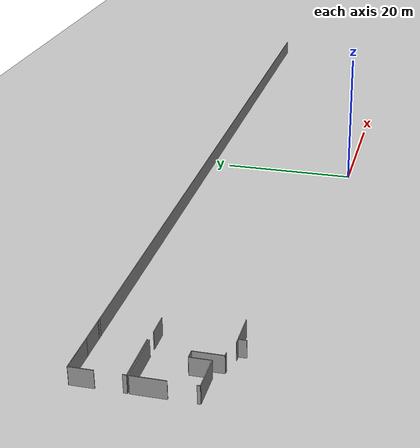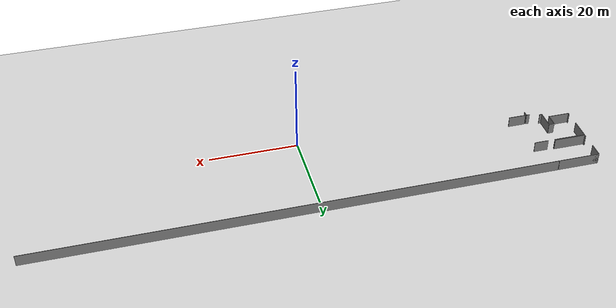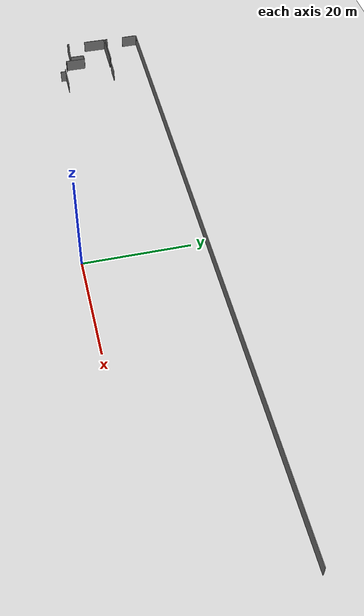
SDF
<sdf version="1.6">
 <world name="default">
  <model name="ground_plane">
   <static>1</static>
   <link name="link">
    <collision name="collision">
     <geometry><plane><normal>0 0 1</normal><size>100 100</size></plane></geometry>
     <surface><friction><ode><mu>100</mu><mu2>50</mu2></ode></friction></surface>
    </collision>
    <visual name="visual">
     <cast_shadows>0</cast_shadows>
     <geometry><plane><normal>0 0 1</normal><size>100 100</size></plane></geometry>
     <material>
      <script><uri>file://media/materials/scripts/gazebo.material</uri><name>Gazebo/Grey</name></script>
     </material>
    </visual>
   </link>
  </model>
  <model name="50010540">
   <static>1</static>
   <link name="Wall_0">
    <collision name="Wall_0_Collision">
     <geometry><box><size>5.65717808411 0.1 2.5</size></box></geometry>
     <pose>2.82858904205 0 1.25 0 0 0</pose>
    </collision>
    <visual name="Wall_0_Visual">
     <pose>2.82858904205 0 1.25 0 0 0</pose>
     <geometry><box><size>5.65717808411 0.1 2.5</size></box></geometry>
     <material>
      <script><uri>file://media/materials/scripts/gazebo.material</uri><name>Gazebo/Grey</name></script>
      <ambient>1 1 1 1</ambient>
     </material>
    </visual>
   </link>
   <link name="Wall_1">
    <collision name="Wall_1_Collision">
     <geometry><box><size>0.677229308471 0.1 2.5</size></box></geometry>
     <pose>0.338614654236 0 1.25 0 0 0</pose>
    </collision>
    <visual name="Wall_1_Visual">
     <pose>0.338614654236 0 1.25 0 0 0</pose>
     <geometry><box><size>0.677229308471 0.1 2.5</size></box></geometry>
     <material>
      <script><uri>file://media/materials/scripts/gazebo.material</uri><name>Gazebo/Grey</name></script>
      <ambient>1 1 1 1</ambient>
     </material>
    </visual>
    <pose>9.3474931203 -0.0 0 0 0 0.0</pose>
   </link>
   <link name="Wall_9">
    <collision name="Wall_9_Collision">
     <geometry><box><size>7.16035259649 0.1 2.5</size></box></geometry>
     <pose>3.58017629825 0 1.25 0 0 0</pose>
    </collision>
    <visual name="Wall_9_Visual">
     <pose>3.58017629825 0 1.25 0 0 0</pose>
     <geometry><box><size>7.16035259649 0.1 2.5</size></box></geometry>
     <material>
      <script><uri>file://media/materials/scripts/gazebo.material</uri><name>Gazebo/Grey</name></script>
      <ambient>1 1 1 1</ambient>
     </material>
    </visual>
    <pose>7.17204649596 -7.03260945553 0 0 0 3.14159265359</pose>
   </link>
   <link name="Wall_10">
    <collision name="Wall_10_Collision">
     <geometry><box><size>0.500295525177 0.1 2.5</size></box></geometry>
     <pose>0.250147762588 0 1.25 0 0 0</pose>
    </collision>
    <visual name="Wall_10_Visual">
     <pose>0.250147762588 0 1.25 0 0 0</pose>
     <geometry><box><size>0.500295525177 0.1 2.5</size></box></geometry>
     <material>
      <script><uri>file://media/materials/scripts/gazebo.material</uri><name>Gazebo/Grey</name></script>
      <ambient>1 1 1 1</ambient>
     </material>
    </visual>
    <pose>0.0116938994706 -7.03260945553 0 0 0 1.57079632679</pose>
   </link>
   <link name="Wall_11">
    <collision name="Wall_11_Collision">
     <geometry><box><size>3.13830850348 0.1 2.5</size></box></geometry>
     <pose>1.56915425174 0 1.25 0 0 0</pose>
    </collision>
    <visual name="Wall_11_Visual">
     <pose>1.56915425174 0 1.25 0 0 0</pose>
     <geometry><box><size>3.13830850348 0.1 2.5</size></box></geometry>
     <material>
      <script><uri>file://media/materials/scripts/gazebo.material</uri><name>Gazebo/Grey</name></script>
      <ambient>1 1 1 1</ambient>
     </material>
    </visual>
    <pose>0.0116938994706 -3.13828671662 0 0 0 1.57452251449</pose>
   </link>
   <link name="Wall_12">
    <collision name="Wall_12_Collision">
     <geometry><box><size>0.398990765633 0.1 2.5</size></box></geometry>
     <pose>0.199495382816 0 1.25 0 0 0</pose>
    </collision>
    <visual name="Wall_12_Visual">
     <pose>0.199495382816 0 1.25 0 0 0</pose>
     <geometry><box><size>0.398990765633 0.1 2.5</size></box></geometry>
     <material>
      <script><uri>file://media/materials/scripts/gazebo.material</uri><name>Gazebo/Grey</name></script>
      <ambient>1 1 1 1</ambient>
     </material>
    </visual>
    <pose>0.00317769007353 -15.5523778655 0 0 0 1.57079632679</pose>
   </link>
   <link name="Wall_13">
    <collision name="Wall_13_Collision">
     <geometry><box><size>4.48067011128 0.1 2.5</size></box></geometry>
     <pose>2.24033505564 0 1.25 0 0 0</pose>
    </collision>
    <visual name="Wall_13_Visual">
     <pose>2.24033505564 0 1.25 0 0 0</pose>
     <geometry><box><size>4.48067011128 0.1 2.5</size></box></geometry>
     <material>
      <script><uri>file://media/materials/scripts/gazebo.material</uri><name>Gazebo/Grey</name></script>
      <ambient>1 1 1 1</ambient>
     </material>
    </visual>
    <pose>0.00317769007353 -11.7484286323 0 0 0 1.57079632679</pose>
   </link>
   <link name="Wall_14">
    <collision name="Wall_14_Collision">
     <geometry><box><size>7.1736988948 0.1 2.5</size></box></geometry>
     <pose>3.5868494474 0 1.25 0 0 0</pose>
    </collision>
    <visual name="Wall_14_Visual">
     <pose>3.5868494474 0 1.25 0 0 0</pose>
     <geometry><box><size>7.1736988948 0.1 2.5</size></box></geometry>
     <material>
      <script><uri>file://media/materials/scripts/gazebo.material</uri><name>Gazebo/Grey</name></script>
      <ambient>1 1 1 1</ambient>
     </material>
    </visual>
    <pose>0.00317769007353 -7.26775852098 0 0 0 0.0</pose>
   </link>
   <link name="Wall_15">
    <collision name="Wall_15_Collision">
     <geometry><box><size>3.19052794143 0.1 2.5</size></box></geometry>
     <pose>1.59526397071 0 1.25 0 0 0</pose>
    </collision>
    <visual name="Wall_15_Visual">
     <pose>1.59526397071 0 1.25 0 0 0</pose>
     <geometry><box><size>3.19052794143 0.1 2.5</size></box></geometry>
     <material>
      <script><uri>file://media/materials/scripts/gazebo.material</uri><name>Gazebo/Grey</name></script>
      <ambient>1 1 1 1</ambient>
     </material>
    </visual>
    <pose>8.74640126599 -7.26775852098 0 0 0 0.0</pose>
   </link>
   <link name="Wall_19">
    <collision name="Wall_19_Collision">
     <geometry><box><size>0.572365536045 0.1 2.5</size></box></geometry>
     <pose>0.286182768022 0 1.25 0 0 0</pose>
    </collision>
    <visual name="Wall_19_Visual">
     <pose>0.286182768022 0 1.25 0 0 0</pose>
     <geometry><box><size>0.572365536045 0.1 2.5</size></box></geometry>
     <material>
      <script><uri>file://media/materials/scripts/gazebo.material</uri><name>Gazebo/Grey</name></script>
      <ambient>1 1 1 1</ambient>
     </material>
    </visual>
    <pose>6.6550998748 -16.7380375857 0 0 0 3.14159265359</pose>
   </link>
   <link name="Wall_20">
    <collision name="Wall_20_Collision">
     <geometry><box><size>3.99766122011 0.1 2.5</size></box></geometry>
     <pose>1.99883061005 0 1.25 0 0 0</pose>
    </collision>
    <visual name="Wall_20_Visual">
     <pose>1.99883061005 0 1.25 0 0 0</pose>
     <geometry><box><size>3.99766122011 0.1 2.5</size></box></geometry>
     <material>
      <script><uri>file://media/materials/scripts/gazebo.material</uri><name>Gazebo/Grey</name></script>
      <ambient>1 1 1 1</ambient>
     </material>
    </visual>
    <pose>6.08273433875 -16.7380375857 0 0 0 1.57079632679</pose>
   </link>
   <link name="Wall_21">
    <collision name="Wall_21_Collision">
     <geometry><box><size>1.2315455649 0.1 2.5</size></box></geometry>
     <pose>0.615772782449 0 1.25 0 0 0</pose>
    </collision>
    <visual name="Wall_21_Visual">
     <pose>0.615772782449 0 1.25 0 0 0</pose>
     <geometry><box><size>1.2315455649 0.1 2.5</size></box></geometry>
     <material>
      <script><uri>file://media/materials/scripts/gazebo.material</uri><name>Gazebo/Grey</name></script>
      <ambient>1 1 1 1</ambient>
     </material>
    </visual>
    <pose>6.08273433875 -12.7403763656 0 0 0 3.14159265359</pose>
   </link>
   <link name="Wall_22">
    <collision name="Wall_22_Collision">
     <geometry><box><size>2.80157867643 0.1 2.5</size></box></geometry>
     <pose>1.40078933821 0 1.25 0 0 0</pose>
    </collision>
    <visual name="Wall_22_Visual">
     <pose>1.40078933821 0 1.25 0 0 0</pose>
     <geometry><box><size>2.80157867643 0.1 2.5</size></box></geometry>
     <material>
      <script><uri>file://media/materials/scripts/gazebo.material</uri><name>Gazebo/Grey</name></script>
      <ambient>1 1 1 1</ambient>
     </material>
    </visual>
    <pose>4.85118877386 -12.7403763656 0 0 0 -1.57079632679</pose>
   </link>
   <link name="Wall_23">
    <collision name="Wall_23_Collision">
     <geometry><box><size>4.84802228787 0.1 2.5</size></box></geometry>
     <pose>2.42401114394 0 1.25 0 0 0</pose>
    </collision>
    <visual name="Wall_23_Visual">
     <pose>2.42401114394 0 1.25 0 0 0</pose>
     <geometry><box><size>4.84802228787 0.1 2.5</size></box></geometry>
     <material>
      <script><uri>file://media/materials/scripts/gazebo.material</uri><name>Gazebo/Grey</name></script>
      <ambient>1 1 1 1</ambient>
     </material>
    </visual>
    <pose>4.85118877386 -15.541955042 0 0 0 -3.13944273949</pose>
   </link>
   <link name="Wall_33">
    <collision name="Wall_33_Collision">
     <geometry><box><size>0.750697502971 0.1 2.5</size></box></geometry>
     <pose>0.375348751486 0 1.25 0 0 0</pose>
    </collision>
    <visual name="Wall_33_Visual">
     <pose>0.375348751486 0 1.25 0 0 0</pose>
     <geometry><box><size>0.750697502971 0.1 2.5</size></box></geometry>
     <material>
      <script><uri>file://media/materials/scripts/gazebo.material</uri><name>Gazebo/Grey</name></script>
      <ambient>1 1 1 1</ambient>
     </material>
    </visual>
    <pose>8.86664505837 -17.3841255315 0 0 0 0.0</pose>
   </link>
   <link name="Wall_34">
    <collision name="Wall_34_Collision">
     <geometry><box><size>1.08816818878 0.1 2.5</size></box></geometry>
     <pose>0.54408409439 0 1.25 0 0 0</pose>
    </collision>
    <visual name="Wall_34_Visual">
     <pose>0.54408409439 0 1.25 0 0 0</pose>
     <geometry><box><size>1.08816818878 0.1 2.5</size></box></geometry>
     <material>
      <script><uri>file://media/materials/scripts/gazebo.material</uri><name>Gazebo/Grey</name></script>
      <ambient>1 1 1 1</ambient>
     </material>
    </visual>
    <pose>9.61734256135 -17.3841255315 0 0 0 -1.57079632679</pose>
   </link>
   <link name="Wall_42">
    <collision name="Wall_42_Collision">
     <geometry><box><size>3.95965604683 0.1 2.5</size></box></geometry>
     <pose>1.97982802341 0 1.25 0 0 0</pose>
    </collision>
    <visual name="Wall_42_Visual">
     <pose>1.97982802341 0 1.25 0 0 0</pose>
     <geometry><box><size>3.95965604683 0.1 2.5</size></box></geometry>
     <material>
      <script><uri>file://media/materials/scripts/gazebo.material</uri><name>Gazebo/Grey</name></script>
      <ambient>1 1 1 1</ambient>
     </material>
    </visual>
    <pose>9.86787164674 -17.3780243665 0 0 0 0.0</pose>
   </link>
   <link name="Wall_353">
    <collision name="Wall_353_Collision">
     <geometry><box><size>125.045282084 0.1 2.5</size></box></geometry>
     <pose>62.5226410418 0 1.25 0 0 0</pose>
    </collision>
    <visual name="Wall_353_Visual">
     <pose>62.5226410418 0 1.25 0 0 0</pose>
     <geometry><box><size>125.045282084 0.1 2.5</size></box></geometry>
     <material>
      <script><uri>file://media/materials/scripts/gazebo.material</uri><name>Gazebo/Grey</name></script>
      <ambient>1 1 1 1</ambient>
     </material>
    </visual>
   </link>
   <pose>-62.5 22.811372635 0 0 0 0</pose>
  </model>
 </world>
</sdf>
